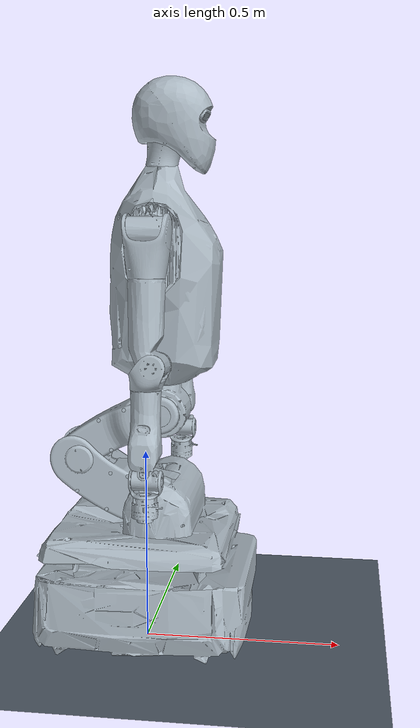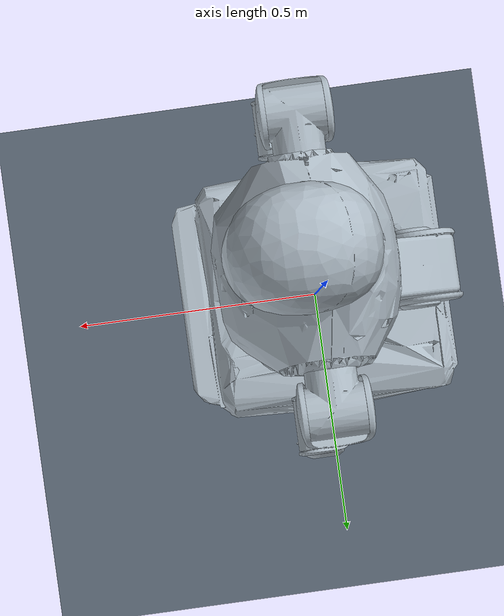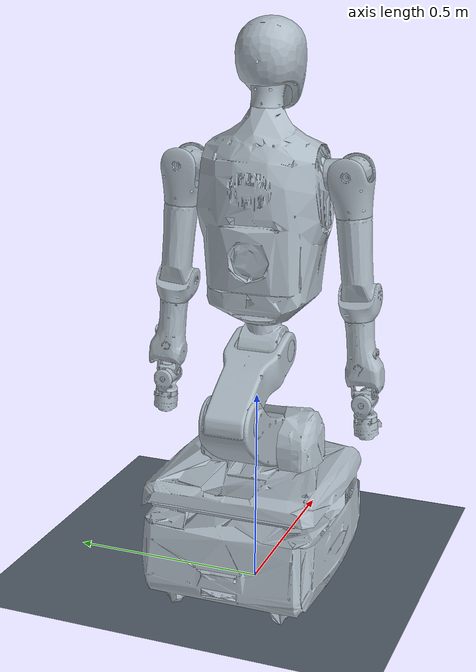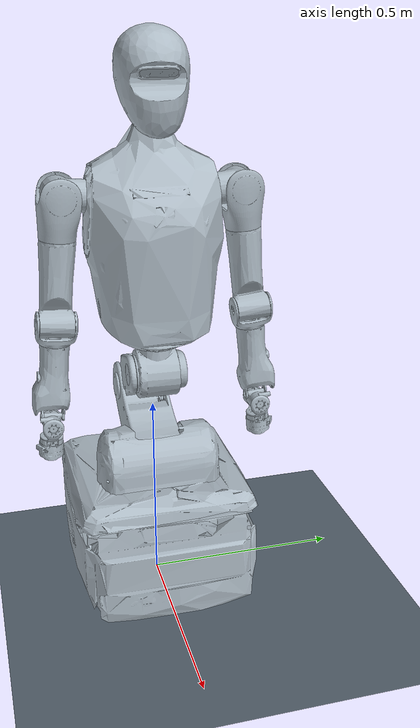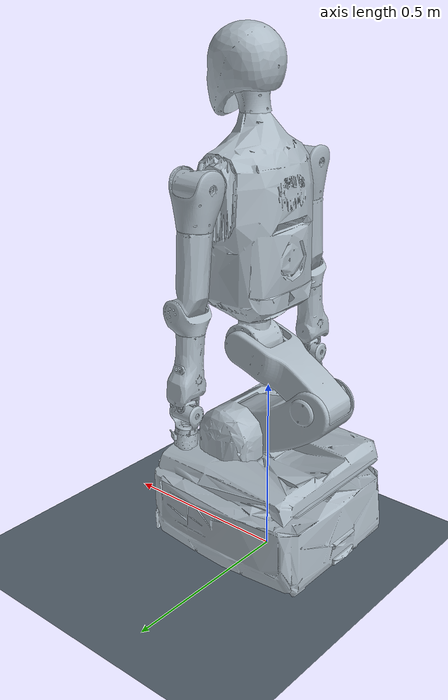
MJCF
<mujoco model="tianyi2_visual_optimized">
  <default>
    <default class="robot">
      <default class="motor_332">
        <joint frictionloss="0.7" damping="1.5" actuatorfrcrange="-332.0 332.0" />
        <position kp="3200" kv="255" />
      </default>
      <default class="motor_91">
        <joint frictionloss="0.15" damping="0.35" actuatorfrcrange="-91.0 91.0" />
        <position kp="2000" kv="290" />
      </default>
      <default class="motor_6_3">
        <joint frictionloss="0.05" damping="0.2" actuatorfrcrange="-6.3 6.3" />
        <position kp="520" kv="58" />
      </default>
      <default class="motor_6_3_arm">
        <joint frictionloss="0.03" damping="0.15" actuatorfrcrange="-6.3 6.3" />
        <position kp="1500" kv="220" />
      </default>
      <default class="motor_95">
        <joint frictionloss="0.15" damping="0.35" actuatorfrcrange="-95.0 95.0" />
        <position kp="2100" kv="305" />
      </default>
      <default class="motor_24">
        <joint frictionloss="0.03" damping="0.15" actuatorfrcrange="-24.0 24.0" />
        <position kp="1400" kv="205" />
      </default>
      <default class="motor_35">
        <joint frictionloss="0.03" damping="0.15" actuatorfrcrange="-35.0 35.0" />
        <position kp="1850" kv="270" />
      </default>
      <default class="motor_143">
        <joint frictionloss="0.3" damping="0.65" actuatorfrcrange="-143.0 143.0" />
        <position kp="2600" kv="215" />
      </default>
      <default class="visual">
        <geom material="visualgeom" contype="0" conaffinity="0" group="2" />
      </default>
      <default class="collision">
        <geom material="collision_material" condim="3" contype="0" conaffinity="1" priority="1" group="1" solref="0.005 1" solimp="0.99 0.999 1e-05" friction="1 0.01 0.01" />
      </default>
    </default>
  </default>
  <compiler angle="radian" />
  <option timestep="0.001" integrator="implicitfast" />
  <visual>
    <global offwidth="1280" offheight="1280" />
    <quality shadowsize="2048" offsamples="2" numslices="24" numstacks="16" numquads="2" />
    <headlight ambient="0.42 0.42 0.42" diffuse="0.72 0.72 0.72" specular="0.18 0.18 0.18" />
  </visual>
  <asset>
    <material name="base_material" rgba="0.68 0.73 0.77 1" specular="0.32" shininess="0.38" />
    <material name="default_material" rgba="0.7 0.7 0.7 1" />
    <material name="collision_material" rgba="0.5 0.5 0.5 0.9" />
    <mesh name="visual_base" file="./meshes_visual_optimized/base.obj" />
    <mesh name="visual_first_leg_pitch_link" file="./meshes_visual_optimized/first_leg_pitch_link.obj" />
    <mesh name="visual_second_leg_pitch_link" file="./meshes_visual_optimized/second_leg_pitch_link.obj" />
    <mesh name="visual_waist_pitch_link" file="./meshes_visual_optimized/waist_pitch_link.obj" />
    <mesh name="visual_waist_yaw_link" file="./meshes_visual_optimized/waist_yaw_link.obj" />
    <mesh name="visual_head_yaw_link" file="./meshes_visual_optimized/head_yaw_link.obj" />
    <mesh name="visual_head_pitch_link" file="./meshes_visual_optimized/head_pitch_link.obj" />
    <mesh name="visual_head_roll_link" file="./meshes_visual_optimized/head_roll_link.obj" />
    <mesh name="visual_camera_head_link" file="./meshes_visual_optimized/camera_head_link.obj" />
    <mesh name="visual_shoulder_pitch_l_link" file="./meshes_visual_optimized/shoulder_pitch_l_link.obj" />
    <mesh name="visual_shoulder_roll_l_link" file="./meshes_visual_optimized/shoulder_roll_l_link.obj" />
    <mesh name="visual_shoulder_yaw_l_link" file="./meshes_visual_optimized/shoulder_yaw_l_link.obj" />
    <mesh name="visual_elbow_pitch_l_link" file="./meshes_visual_optimized/elbow_pitch_l_link.obj" />
    <mesh name="visual_elbow_yaw_l_link" file="./meshes_visual_optimized/elbow_yaw_l_link.obj" />
    <mesh name="visual_wrist_pitch_l_link" file="./meshes_visual_optimized/wrist_pitch_l_link.obj" />
    <mesh name="visual_wrist_roll_l_link" file="./meshes_visual_optimized/wrist_roll_l_link.obj" />
    <mesh name="visual_left_tcp_link" file="./meshes_visual_optimized/left_tcp_link.obj" />
    <mesh name="visual_shoulder_pitch_r_link" file="./meshes_visual_optimized/shoulder_pitch_r_link.obj" />
    <mesh name="visual_shoulder_roll_r_link" file="./meshes_visual_optimized/shoulder_roll_r_link.obj" />
    <mesh name="visual_shoulder_yaw_r_link" file="./meshes_visual_optimized/shoulder_yaw_r_link.obj" />
    <mesh name="visual_elbow_pitch_r_link" file="./meshes_visual_optimized/elbow_pitch_r_link.obj" />
    <mesh name="visual_elbow_yaw_r_link" file="./meshes_visual_optimized/elbow_yaw_r_link.obj" />
    <mesh name="visual_wrist_pitch_r_link" file="./meshes_visual_optimized/wrist_pitch_r_link.obj" />
    <mesh name="visual_wrist_roll_r_link" file="./meshes_visual_optimized/wrist_roll_r_link.obj" />
    <mesh name="visual_right_tcp_link" file="./meshes_visual_optimized/right_tcp_link.obj" />
    <texture name="visual_sky" type="skybox" builtin="gradient" rgb1="0.16 0.21 0.28" rgb2="0.55 0.63 0.7" width="512" height="3072" />
  </asset>
  <worldbody>
    <light name="visual_key_light" directional="true" castshadow="true" pos="2.5 2.0 3.5" dir="-0.5 -0.35 -1" diffuse="0.72 0.75 0.8" specular="0.25 0.25 0.25" />
    <light name="visual_fill_light" directional="true" castshadow="false" pos="-2 -2 2.5" dir="0.5 0.4 -1" diffuse="0.28 0.31 0.36" specular="0.08 0.08 0.08" />
    <geom name="floor" type="plane" size="10 10 0.1" pos="0 0 0" quat="1 0 0 0" rgba="0.34 0.39 0.44 1" friction="1 0.005 0.0001" condim="3" />
    <body name="base" pos="0.00000000 0.00000000 0.00000000" quat="1 0 0 0" childclass="robot">
      <inertial pos="-0.00067 -0.002625 0.150395" quat="1.0 0.0 0.0 0.0" mass="47.555667" diaginertia="1.277779 1.293166 1.385346" />
      <geom name="base_visual" pos="0 0 0" quat="1.0 0.0 0.0 0.0" material="base_material" type="mesh" mesh="visual_base" class="visual" />
      <body name="first_leg_pitch_link" pos="0.049182 0 0.37" quat="1.0 0.0 0.0 0.0">
        <joint name="first_leg_pitch_joint" type="hinge" ref="0.0" class="motor_332" range="-0.41887902047863906 0.9075712110370514" axis="0 1 0" />
        <inertial pos="-0.105847 -0.000632 0.041305" quat="1.0 0.0 0.0 0.0" mass="2.460134" diaginertia="0.012918 0.028707 0.027239" />
        <geom name="first_leg_pitch_link_visual" pos="0 0 0" quat="1.0 0.0 0.0 0.0" material="base_material" type="mesh" mesh="visual_first_leg_pitch_link" class="visual" />
        <body name="second_leg_pitch_link" pos="-0.20785 0 0.12" quat="1.0 0.0 0.0 0.0">
          <joint name="second_leg_pitch_joint" type="hinge" ref="0.0" class="motor_332" range="-1.7453292519943295 0.5061454830783556" axis="0 1 0" />
          <inertial pos="0.056775 0.000389 0.045258" quat="1.0 0.0 0.0 0.0" mass="2.430846" diaginertia="0.011853 0.025086 0.022169" />
          <geom name="second_leg_pitch_link_visual" pos="0 0 0" quat="1.0 0.0 0.0 0.0" material="base_material" type="mesh" mesh="visual_second_leg_pitch_link" class="visual" />
          <body name="waist_pitch_link" pos="0.20785 0 0.12" quat="1.0 0.0 0.0 0.0">
            <joint name="waist_pitch_joint" type="hinge" ref="0.0" class="motor_332" range="-0.7853981633974483 2.0943951023931953" axis="0 1 0" />
            <inertial pos="8e-06 0.012369 0.001276" quat="1.0 0.0 0.0 0.0" mass="3.38238" diaginertia="0.005589 0.006064 0.005334" />
            <geom name="waist_pitch_link_visual" pos="0 0 0" quat="1.0 0.0 0.0 0.0" material="base_material" type="mesh" mesh="visual_waist_pitch_link" class="visual" />
            <body name="waist_yaw_link" pos="0 0 0.07" quat="1.0 0.0 0.0 0.0">
              <joint name="waist_yaw_joint" type="hinge" ref="0.0" class="motor_143" range="-2.9670597283903604 3.141592653589793" axis="0 0 1" />
              <inertial pos="0.009196 -0.000592 0.251379" quat="1.0 0.0 0.0 0.0" mass="13.795395" diaginertia="0.372395 0.331609 0.127753" />
              <geom name="waist_yaw_link_visual" pos="0 0 0" quat="1.0 0.0 0.0 0.0" material="base_material" type="mesh" mesh="visual_waist_yaw_link" class="visual" />
              <body name="head_yaw_link" pos="-0.002 0 0.56508" quat="1.0 0.0 0.0 0.0">
                <joint name="head_yaw_joint" type="hinge" ref="0.0" class="motor_6_3" range="-1.5707963267948966 1.5707963267948966" axis="0 0 1" />
                <inertial pos="-0.000202 0.000454 0.007248" quat="1.0 0.0 0.0 0.0" mass="0.088397" diaginertia="9.5e-05 7.6e-05 0.000106" />
                <geom name="head_yaw_link_visual" pos="0 0 0" quat="1.0 0.0 0.0 0.0" material="base_material" type="mesh" mesh="visual_head_yaw_link" class="visual" />
                <body name="head_pitch_link" pos="0.01455 0 0.0304" quat="0.991444821419641 0.0 0.1305264957017392 0.0">
                  <joint name="head_pitch_joint" type="hinge" ref="0.0" class="motor_6_3" range="-0.4363323129985824 0.4363323129985824" axis="0 1 0" />
                  <inertial pos="-0.000274 0.004118 2.3e-05" quat="1.0 0.0 0.0 0.0" mass="0.23046" diaginertia="9.2e-05 5.4e-05 9.5e-05" />
                  <geom name="head_pitch_link_visual" pos="0 0 0" quat="1.0 0.0 0.0 0.0" material="base_material" type="mesh" mesh="visual_head_pitch_link" class="visual" />
                  <body name="head_roll_link" pos="0 0 0" quat="1.0 0.0 0.0 0.0">
                    <joint name="head_roll_joint" type="hinge" ref="0.0" class="motor_6_3" range="-0.4537856055185257 0.4537856055185257" axis="1 0 0" />
                    <inertial pos="0.022467 0.001208 0.053952" quat="1.0 0.0 0.0 0.0" mass="0.844627" diaginertia="0.00235 0.003365 0.002875" />
                    <geom name="head_roll_link_visual" pos="0 0 0" quat="1.0 0.0 0.0 0.0" material="base_material" type="mesh" mesh="visual_head_roll_link" class="visual" />
                    <body name="camera_head_link" pos="0.075288 0.010935 0.07441" quat="0.4304573419693023 -0.5609854188320508 0.5609874794503387 -0.43045892313031153">
                      <inertial pos="0.010986 -0.000307 -0.016475" quat="1.0 0.0 0.0 0.0" mass="0.1" diaginertia="1.6e-05 8e-05 7.7e-05" />
                      <geom name="camera_head_link_visual" pos="0 0 0" quat="1.0 0.0 0.0 0.0" material="base_material" type="mesh" mesh="visual_camera_head_link" class="visual" />
                    </body>
                  </body>
                </body>
              </body>
              <body name="shoulder_pitch_l_link" pos="0 0.14539 0.37721" quat="0.9990482316709891 0.0436191562856228 0.0 0.0">
                <joint name="shoulder_pitch_l_joint" type="hinge" ref="0.0" class="motor_91" range="-2.9670597283903604 2.9670597283903604" axis="0 1 0" />
                <inertial pos="0.007494 0.064184 -2e-05" quat="1.0 0.0 0.0 0.0" mass="1.032698" diaginertia="0.001025 0.001078 0.001247" />
                <geom name="shoulder_pitch_l_link_visual" pos="0 0 0" quat="1.0 0.0 0.0 0.0" material="base_material" type="mesh" mesh="visual_shoulder_pitch_l_link" class="visual" />
                <body name="shoulder_roll_l_link" pos="0 0.068 0" quat="1.0 0.0 0.0 0.0">
                  <joint name="shoulder_roll_l_joint" type="hinge" ref="0.0" class="motor_95" range="-0.2617993877991494 2.6179938779914944" axis="1 0 0" />
                  <inertial pos="0.002389 0.002259 -0.048236" quat="1.0 0.0 0.0 0.0" mass="0.440997" diaginertia="0.001001 0.001313 0.000911" />
                  <geom name="shoulder_roll_l_link_visual" pos="0 0 0" quat="1.0 0.0 0.0 0.0" material="base_material" type="mesh" mesh="visual_shoulder_roll_l_link" class="visual" />
                  <body name="shoulder_yaw_l_link" pos="0 0 -0.1025" quat="1.0 0.0 0.0 0.0">
                    <joint name="shoulder_yaw_l_joint" type="hinge" ref="0.0" class="motor_35" range="-2.9670597283903604 2.9670597283903604" axis="0 0 1" />
                    <inertial pos="0.008319 0.002686 -0.112525" quat="1.0 0.0 0.0 0.0" mass="1.365033" diaginertia="0.009637 0.0096 0.001331" />
                    <geom name="shoulder_yaw_l_link_visual" pos="0 0 0" quat="1.0 0.0 0.0 0.0" material="base_material" type="mesh" mesh="visual_shoulder_yaw_l_link" class="visual" />
                    <body name="elbow_pitch_l_link" pos="0.02 0 -0.1975" quat="1.0 0.0 0.0 0.0">
                      <joint name="elbow_pitch_l_joint" type="hinge" ref="0.0" class="motor_35" range="-2.6179938779914944 0.2617993877991494" axis="0 1 0" />
                      <inertial pos="-0.014694 -7.2e-05 -0.026081" quat="1.0 0.0 0.0 0.0" mass="0.246311" diaginertia="0.000381 0.000222 0.000401" />
                      <geom name="elbow_pitch_l_link_visual" pos="0 0 0" quat="1.0 0.0 0.0 0.0" material="base_material" type="mesh" mesh="visual_elbow_pitch_l_link" class="visual" />
                      <body name="elbow_yaw_l_link" pos="-0.02 0 -0.0543" quat="1.0 0.0 0.0 0.0">
                        <joint name="elbow_yaw_l_joint" type="hinge" ref="0.0" class="motor_24" range="-2.9670597283903604 2.9670597283903604" axis="0 0 1" />
                        <inertial pos="0.000158 0.001503 -0.069535" quat="1.0 0.0 0.0 0.0" mass="0.986828" diaginertia="0.003108 0.003035 0.00058" />
                        <geom name="elbow_yaw_l_link_visual" pos="0 0 0" quat="1.0 0.0 0.0 0.0" material="base_material" type="mesh" mesh="visual_elbow_yaw_l_link" class="visual" />
                        <body name="wrist_pitch_l_link" pos="0 0.002 -0.1887" quat="1.0 0.0 0.0 0.0">
                          <joint name="wrist_pitch_l_joint" type="hinge" ref="0.0" class="motor_6_3_arm" range="-0.7853981633974483 1.0471975511965976" axis="0 1 0" />
                          <inertial pos="0.005362 0.00064 -0.018812" quat="1.0 0.0 0.0 0.0" mass="0.262007" diaginertia="7.1e-05 0.000112 0.000111" />
                          <geom name="wrist_pitch_l_link_visual" pos="0 0 0" quat="1.0 0.0 0.0 0.0" material="base_material" type="mesh" mesh="visual_wrist_pitch_l_link" class="visual" />
                          <body name="wrist_roll_l_link" pos="5.0485E-05 0 -0.02" quat="1.0 0.0 0.0 0.0">
                            <joint name="wrist_roll_l_joint" type="hinge" ref="0.0" class="motor_6_3_arm" range="-1.6580627893946132 1.3089969389957472" axis="1 0 0" />
                            <inertial pos="0.000801 8.4e-05 -0.029302" quat="1.0 0.0 0.0 0.0" mass="0.131751" diaginertia="6.9e-05 0.000116 0.00011" />
                            <geom name="wrist_roll_l_link_visual" pos="0 0 0" quat="1.0 0.0 0.0 0.0" material="base_material" type="mesh" mesh="visual_wrist_roll_l_link" class="visual" />
                            <body name="left_tcp_link" pos="0 3.5454E-05 -0.084799" quat="1.0 0.0 0.0 0.0">
                              <inertial pos="0.000238 0.000502 0.021714" quat="1.0 0.0 0.0 0.0" mass="0.252604" diaginertia="0.000124 0.000119 0.000132" />
                              <geom name="left_tcp_link_visual" pos="0 0 0" quat="1.0 0.0 0.0 0.0" material="base_material" type="mesh" mesh="visual_left_tcp_link" class="visual" />
                            </body>
                          </body>
                        </body>
                      </body>
                    </body>
                  </body>
                </body>
              </body>
              <body name="shoulder_pitch_r_link" pos="0 -0.14539 0.37721" quat="0.9990482316709891 -0.0436191562856228 0.0 0.0">
                <joint name="shoulder_pitch_r_joint" type="hinge" ref="0.0" class="motor_91" range="-2.9670597283903604 2.9670597283903604" axis="0 1 0" />
                <inertial pos="0.007494 -0.064184 -2e-05" quat="1.0 0.0 0.0 0.0" mass="1.032698" diaginertia="0.001025 0.001078 0.001247" />
                <geom name="shoulder_pitch_r_link_visual" pos="0 0 0" quat="1.0 0.0 0.0 0.0" material="base_material" type="mesh" mesh="visual_shoulder_pitch_r_link" class="visual" />
                <body name="shoulder_roll_r_link" pos="0 -0.068 0" quat="1.0 0.0 0.0 0.0">
                  <joint name="shoulder_roll_r_joint" type="hinge" ref="0.0" class="motor_95" range="-2.6179938779914944 0.2617993877991494" axis="1 0 0" />
                  <inertial pos="0.002389 -0.002259 -0.048236" quat="1.0 0.0 0.0 0.0" mass="0.440997" diaginertia="0.001001 0.001313 0.000911" />
                  <geom name="shoulder_roll_r_link_visual" pos="0 0 0" quat="1.0 0.0 0.0 0.0" material="base_material" type="mesh" mesh="visual_shoulder_roll_r_link" class="visual" />
                  <body name="shoulder_yaw_r_link" pos="0 0 -0.1025" quat="1.0 0.0 0.0 0.0">
                    <joint name="shoulder_yaw_r_joint" type="hinge" ref="0.0" class="motor_35" range="-2.9670597283903604 2.9670597283903604" axis="0 0 1" />
                    <inertial pos="0.008319 -0.002686 -0.112525" quat="1.0 0.0 0.0 0.0" mass="1.365033" diaginertia="0.009637 0.0096 0.001331" />
                    <geom name="shoulder_yaw_r_link_visual" pos="0 0 0" quat="1.0 0.0 0.0 0.0" material="base_material" type="mesh" mesh="visual_shoulder_yaw_r_link" class="visual" />
                    <body name="elbow_pitch_r_link" pos="0.02 0 -0.1975" quat="1.0 0.0 0.0 0.0">
                      <joint name="elbow_pitch_r_joint" type="hinge" ref="0.0" class="motor_35" range="-2.6179938779914944 0.2617993877991494" axis="0 1 0" />
                      <inertial pos="-0.014694 7.2e-05 -0.026081" quat="1.0 0.0 0.0 0.0" mass="0.246311" diaginertia="0.000381 0.000222 0.000401" />
                      <geom name="elbow_pitch_r_link_visual" pos="0 0 0" quat="1.0 0.0 0.0 0.0" material="base_material" type="mesh" mesh="visual_elbow_pitch_r_link" class="visual" />
                      <body name="elbow_yaw_r_link" pos="-0.02 0 -0.0543" quat="1.0 0.0 0.0 0.0">
                        <joint name="elbow_yaw_r_joint" type="hinge" ref="0.0" class="motor_24" range="-2.9670597283903604 2.9670597283903604" axis="0 0 1" />
                        <inertial pos="0.000158 -0.001503 -0.069535" quat="1.0 0.0 0.0 0.0" mass="0.986828" diaginertia="0.003108 0.003035 0.00058" />
                        <geom name="elbow_yaw_r_link_visual" pos="0 0 0" quat="1.0 0.0 0.0 0.0" material="base_material" type="mesh" mesh="visual_elbow_yaw_r_link" class="visual" />
                        <body name="wrist_pitch_r_link" pos="0 -0.002 -0.1887" quat="1.0 0.0 0.0 0.0">
                          <joint name="wrist_pitch_r_joint" type="hinge" ref="0.0" class="motor_6_3_arm" range="-0.7853981633974483 1.0471975511965976" axis="0 1 0" />
                          <inertial pos="0.005362 -0.00064 -0.018812" quat="1.0 0.0 0.0 0.0" mass="0.262007" diaginertia="7.1e-05 0.000112 0.000111" />
                          <geom name="wrist_pitch_r_link_visual" pos="0 0 0" quat="1.0 0.0 0.0 0.0" material="base_material" type="mesh" mesh="visual_wrist_pitch_r_link" class="visual" />
                          <body name="wrist_roll_r_link" pos="5.0485E-05 0 -0.02" quat="1.0 0.0 0.0 0.0">
                            <joint name="wrist_roll_r_joint" type="hinge" ref="0.0" class="motor_6_3_arm" range="-1.3089969389957472 1.6580627893946132" axis="1 0 0" />
                            <inertial pos="0.000801 -8.4e-05 -0.029302" quat="1.0 0.0 0.0 0.0" mass="0.131751" diaginertia="6.9e-05 0.000116 0.00011" />
                            <geom name="wrist_roll_r_link_visual" pos="0 0 0" quat="1.0 0.0 0.0 0.0" material="base_material" type="mesh" mesh="visual_wrist_roll_r_link" class="visual" />
                            <body name="right_tcp_link" pos="0 -3.5405E-05 -0.084799" quat="1.0 0.0 0.0 0.0">
                              <inertial pos="0.000238 -0.000502 0.021714" quat="1.0 0.0 0.0 0.0" mass="0.252604" diaginertia="0.000124 0.000119 0.000132" />
                              <geom name="right_tcp_link_visual" pos="0 0 0" quat="1.0 0.0 0.0 0.0" material="base_material" type="mesh" mesh="visual_right_tcp_link" class="visual" />
                            </body>
                          </body>
                        </body>
                      </body>
                    </body>
                  </body>
                </body>
              </body>
            </body>
          </body>
        </body>
      </body>
      <site name="base_site" pos="0 0 0" quat="1 0 0 0" />
      <camera name="front_camera" mode="track" fovy="90.0" quat="4.329780281177467e-17 4.329780281177466e-17 0.7071067811865475 0.7071067811865476" pos="0.0 2.0 0.5" />
      <camera name="side_camera" mode="track" fovy="90.0" quat="-0.5 -0.4999999999999999 0.5 0.5000000000000001" pos="-2.0 0.0 0.5" />
    </body>
  </worldbody>
  <actuator>
    <position name="first_leg_pitch_joint_ctrl" joint="first_leg_pitch_joint" class="motor_332" ctrlrange="-0.41887902047863906 0.9075712110370514" />
    <position name="second_leg_pitch_joint_ctrl" joint="second_leg_pitch_joint" class="motor_332" ctrlrange="-1.7453292519943295 0.5061454830783556" />
    <position name="waist_pitch_joint_ctrl" joint="waist_pitch_joint" class="motor_332" ctrlrange="-0.7853981633974483 2.0943951023931953" />
    <position name="waist_yaw_joint_ctrl" joint="waist_yaw_joint" class="motor_143" ctrlrange="-2.9670597283903604 3.141592653589793" />
    <position name="head_yaw_joint_ctrl" joint="head_yaw_joint" class="motor_6_3" ctrlrange="-1.5707963267948966 1.5707963267948966" />
    <position name="head_pitch_joint_ctrl" joint="head_pitch_joint" class="motor_6_3" ctrlrange="-0.4363323129985824 0.4363323129985824" />
    <position name="head_roll_joint_ctrl" joint="head_roll_joint" class="motor_6_3" ctrlrange="-0.4537856055185257 0.4537856055185257" />
    <position name="shoulder_pitch_l_joint_ctrl" joint="shoulder_pitch_l_joint" class="motor_91" ctrlrange="-2.9670597283903604 2.9670597283903604" />
    <position name="shoulder_roll_l_joint_ctrl" joint="shoulder_roll_l_joint" class="motor_95" ctrlrange="-0.2617993877991494 2.6179938779914944" />
    <position name="shoulder_yaw_l_joint_ctrl" joint="shoulder_yaw_l_joint" class="motor_35" ctrlrange="-2.9670597283903604 2.9670597283903604" />
    <position name="elbow_pitch_l_joint_ctrl" joint="elbow_pitch_l_joint" class="motor_35" ctrlrange="-2.6179938779914944 0.2617993877991494" />
    <position name="elbow_yaw_l_joint_ctrl" joint="elbow_yaw_l_joint" class="motor_24" ctrlrange="-2.9670597283903604 2.9670597283903604" />
    <position name="wrist_pitch_l_joint_ctrl" joint="wrist_pitch_l_joint" class="motor_6_3_arm" ctrlrange="-0.7853981633974483 1.0471975511965976" />
    <position name="wrist_roll_l_joint_ctrl" joint="wrist_roll_l_joint" class="motor_6_3_arm" ctrlrange="-1.6580627893946132 1.3089969389957472" />
    <position name="shoulder_pitch_r_joint_ctrl" joint="shoulder_pitch_r_joint" class="motor_91" ctrlrange="-2.9670597283903604 2.9670597283903604" />
    <position name="shoulder_roll_r_joint_ctrl" joint="shoulder_roll_r_joint" class="motor_95" ctrlrange="-2.6179938779914944 0.2617993877991494" />
    <position name="shoulder_yaw_r_joint_ctrl" joint="shoulder_yaw_r_joint" class="motor_35" ctrlrange="-2.9670597283903604 2.9670597283903604" />
    <position name="elbow_pitch_r_joint_ctrl" joint="elbow_pitch_r_joint" class="motor_35" ctrlrange="-2.6179938779914944 0.2617993877991494" />
    <position name="elbow_yaw_r_joint_ctrl" joint="elbow_yaw_r_joint" class="motor_24" ctrlrange="-2.9670597283903604 2.9670597283903604" />
    <position name="wrist_pitch_r_joint_ctrl" joint="wrist_pitch_r_joint" class="motor_6_3_arm" ctrlrange="-0.7853981633974483 1.0471975511965976" />
    <position name="wrist_roll_r_joint_ctrl" joint="wrist_roll_r_joint" class="motor_6_3_arm" ctrlrange="-1.3089969389957472 1.6580627893946132" />
  </actuator>
  <contact>
    <exclude body1="base" body2="first_leg_pitch_link" />
    <exclude body1="first_leg_pitch_link" body2="second_leg_pitch_link" />
    <exclude body1="second_leg_pitch_link" body2="waist_pitch_link" />
    <exclude body1="waist_pitch_link" body2="waist_yaw_link" />
    <exclude body1="waist_yaw_link" body2="head_yaw_link" />
    <exclude body1="head_yaw_link" body2="head_pitch_link" />
    <exclude body1="head_pitch_link" body2="head_roll_link" />
    <exclude body1="head_roll_link" body2="camera_head_link" />
    <exclude body1="waist_yaw_link" body2="shoulder_pitch_l_link" />
    <exclude body1="shoulder_pitch_l_link" body2="shoulder_roll_l_link" />
    <exclude body1="shoulder_roll_l_link" body2="shoulder_yaw_l_link" />
    <exclude body1="shoulder_yaw_l_link" body2="elbow_pitch_l_link" />
    <exclude body1="elbow_pitch_l_link" body2="elbow_yaw_l_link" />
    <exclude body1="elbow_yaw_l_link" body2="wrist_pitch_l_link" />
    <exclude body1="wrist_pitch_l_link" body2="wrist_roll_l_link" />
    <exclude body1="wrist_roll_l_link" body2="left_tcp_link" />
    <exclude body1="waist_yaw_link" body2="shoulder_pitch_r_link" />
    <exclude body1="shoulder_pitch_r_link" body2="shoulder_roll_r_link" />
    <exclude body1="shoulder_roll_r_link" body2="shoulder_yaw_r_link" />
    <exclude body1="shoulder_yaw_r_link" body2="elbow_pitch_r_link" />
    <exclude body1="elbow_pitch_r_link" body2="elbow_yaw_r_link" />
    <exclude body1="elbow_yaw_r_link" body2="wrist_pitch_r_link" />
    <exclude body1="wrist_pitch_r_link" body2="wrist_roll_r_link" />
    <exclude body1="wrist_roll_r_link" body2="right_tcp_link" />
  </contact>
  <sensor>
    <framepos name="base_site_pos" objtype="site" objname="base_site" />
    <framequat name="base_site_quat" objtype="site" objname="base_site" />
    <framelinvel name="base_site_linvel" objtype="site" objname="base_site" />
    <frameangvel name="base_site_angvel" objtype="site" objname="base_site" />
    <velocimeter name="base_site_vel" site="base_site" />
  </sensor>
</mujoco>
